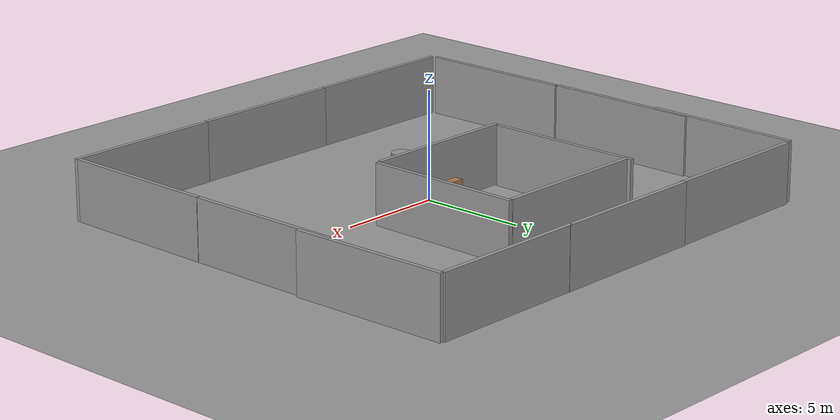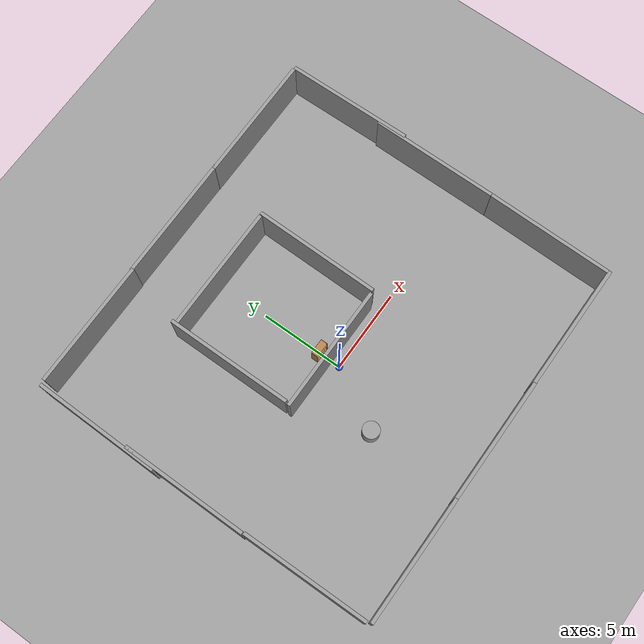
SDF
<sdf version="1.6">
 <world name="default">
  <light name="sun" type="directional">
   <pose>0 0 10 0 -0 0</pose>
   <diffuse>0.8 0.8 0.8 1</diffuse>
   <specular>0.2 0.2 0.2 1</specular>
   <attenuation>
    <range>1000</range>
    <constant>0.9</constant>
    <linear>0.01</linear>
    <quadratic>0.001</quadratic>
   </attenuation>
   <direction>0.5 0.1 -0.9</direction>
  </light>
  <scene><ambient>0.4 0.4 0.4 1</ambient><background>0.7 0.7 0.7 1</background><shadows>1</shadows></scene>
  <physics name="default_physics" default="0" type="ode">
   <max_step_size>0.01</max_step_size>
   <real_time_factor>1</real_time_factor>
   <real_time_update_rate>100</real_time_update_rate>
  </physics>
  <model name="bookshelf">
   <static>1</static>
   <link name="link">
    <inertial><mass>1</mass></inertial>
    <collision name="back">
     <pose>0 0.005 0.6 0 -0 0</pose>
     <geometry><box><size>0.9 0.01 1.2</size></box></geometry>
    </collision>
    <visual name="visual1">
     <pose>0 0.005 0.6 0 -0 0</pose>
     <geometry><box><size>0.9 0.01 1.2</size></box></geometry>
     <material>
      <script><uri>file://media/materials/scripts/gazebo.material</uri><name>Gazebo/Wood</name></script>
     </material>
    </visual>
    <collision name="left_side">
     <pose>0.45 -0.195 0.6 0 -0 0</pose>
     <geometry><box><size>0.02 0.4 1.2</size></box></geometry>
    </collision>
    <visual name="visual2">
     <pose>0.45 -0.195 0.6 0 -0 0</pose>
     <geometry><box><size>0.02 0.4 1.2</size></box></geometry>
     <material>
      <script><uri>file://media/materials/scripts/gazebo.material</uri><name>Gazebo/Wood</name></script>
     </material>
    </visual>
    <collision name="right_side">
     <pose>-0.45 -0.195 0.6 0 -0 0</pose>
     <geometry><box><size>0.02 0.4 1.2</size></box></geometry>
    </collision>
    <visual name="visual3">
     <pose>-0.45 -0.195 0.6 0 -0 0</pose>
     <geometry><box><size>0.02 0.4 1.2</size></box></geometry>
     <material>
      <script><uri>file://media/materials/scripts/gazebo.material</uri><name>Gazebo/Wood</name></script>
     </material>
    </visual>
    <collision name="bottom">
     <pose>0 -0.195 0.03 0 -0 0</pose>
     <geometry><box><size>0.88 0.4 0.06</size></box></geometry>
    </collision>
    <visual name="visual4">
     <pose>0 -0.195 0.03 0 -0 0</pose>
     <geometry><box><size>0.88 0.4 0.06</size></box></geometry>
     <material>
      <script><uri>file://media/materials/scripts/gazebo.material</uri><name>Gazebo/Wood</name></script>
     </material>
    </visual>
    <collision name="top">
     <pose>0 -0.195 1.19 0 -0 0</pose>
     <geometry><box><size>0.88 0.4 0.02</size></box></geometry>
    </collision>
    <visual name="visual5">
     <pose>0 -0.195 1.19 0 -0 0</pose>
     <geometry><box><size>0.88 0.4 0.02</size></box></geometry>
     <material>
      <script><uri>file://media/materials/scripts/gazebo.material</uri><name>Gazebo/Wood</name></script>
     </material>
    </visual>
    <collision name="low_shelf">
     <pose>0 -0.195 0.43 0 -0 0</pose>
     <geometry><box><size>0.88 0.4 0.02</size></box></geometry>
    </collision>
    <visual name="visual6">
     <pose>0 -0.195 0.43 0 -0 0</pose>
     <geometry><box><size>0.88 0.4 0.02</size></box></geometry>
     <material>
      <script><uri>file://media/materials/scripts/gazebo.material</uri><name>Gazebo/Wood</name></script>
     </material>
    </visual>
    <collision name="high_shelf">
     <pose>0 -0.195 0.8 0 -0 0</pose>
     <geometry><box><size>0.88 0.4 0.02</size></box></geometry>
    </collision>
    <visual name="visual7">
     <pose>0 -0.195 0.8 0 -0 0</pose>
     <geometry><box><size>0.88 0.4 0.02</size></box></geometry>
     <material>
      <script><uri>file://media/materials/scripts/gazebo.material</uri><name>Gazebo/Wood</name></script>
     </material>
    </visual>
    <velocity_decay><linear>0</linear><angular>0</angular></velocity_decay>
   </link>
   <pose>0 1.53026 0 0 -0 0</pose>
  </model>
  <model name="ground_plane_0">
   <static>1</static>
   <link name="link">
    <collision name="collision">
     <geometry><plane><normal>0 0 1</normal><size>100 100</size></plane></geometry>
     <surface><friction><ode><mu>100</mu><mu2>50</mu2></ode></friction></surface>
    </collision>
    <visual name="visual">
     <cast_shadows>0</cast_shadows>
     <geometry><plane><normal>0 0 1</normal><size>100 100</size></plane></geometry>
     <material>
      <script><uri>file://media/materials/scripts/gazebo.material</uri><name>Gazebo/Grey</name></script>
     </material>
    </visual>
    <velocity_decay><linear>0</linear><angular>0</angular></velocity_decay>
   </link>
   <pose>0.497681 0 0 0 -0 0</pose>
  </model>
  <model name="unit_cylinder_1">
   <pose>-2 -3.4888 0.49912 0 -0 0</pose>
   <link name="link">
    <inertial>
     <mass>1</mass>
     <inertia><ixx>1</ixx><ixy>0</ixy><ixz>0</ixz><iyy>1</iyy><iyz>0</iyz><izz>1</izz></inertia>
    </inertial>
    <collision name="collision">
     <geometry><cylinder><radius>0.5</radius><length>1</length></cylinder></geometry>
    </collision>
    <visual name="visual">
     <geometry><cylinder><radius>0.5</radius><length>1</length></cylinder></geometry>
     <material>
      <script><uri>file://media/materials/scripts/gazebo.material</uri><name>Gazebo/Grey</name></script>
     </material>
    </visual>
    <velocity_decay><linear>0</linear><angular>0</angular></velocity_decay>
   </link>
   <static>0</static>
  </model>
  <gravity>0 0 -9.8</gravity>
  <magnetic_field>6e-06 2.3e-05 -4.2e-05</magnetic_field>
  <atmosphere type="adiabatic"/>
  <spherical_coordinates>
   <surface_model>EARTH_WGS84</surface_model>
   <latitude_deg>0</latitude_deg>
   <longitude_deg>0</longitude_deg>
   <elevation>0</elevation>
   <heading_deg>0</heading_deg>
  </spherical_coordinates>
  <model name="mbot">
   <link name="base_footprint">
    <inertial>
     <pose>0 0 0.110522 0 -0 0</pose>
     <mass>20.1</mass>
     <inertia><ixx>0.253764</ixx><ixy>0</ixy><ixz>0</ixz><iyy>0.253764</iyy><iyz>0</iyz><izz>0.41</izz></inertia>
    </inertial>
    <collision name="base_footprint_fixed_joint_lump__base_link_collision">
     <pose>0 0 0.11 0 -0 0</pose>
     <geometry><cylinder><length>0.16</length><radius>0.2</radius></cylinder></geometry>
    </collision>
    <collision name="base_footprint_fixed_joint_lump__laser_link_collision_1">
     <pose>0 0 0.215 0 -0 0</pose>
     <geometry><cylinder><length>0.06</length><radius>0.05</radius></cylinder></geometry>
    </collision>
    <visual name="base_footprint_visual">
     <geometry><box><size>0.001 0.001 0.001</size></box></geometry>
     <material><script><uri>__default__</uri><name>__default__</name></script></material>
    </visual>
    <visual name="base_footprint_fixed_joint_lump__base_link_visual_1">
     <pose>0 0 0.11 0 -0 0</pose>
     <geometry><cylinder><length>0.16</length><radius>0.2</radius></cylinder></geometry>
     <material>
      <script><name>Gazebo/Blue</name><uri>file://media/materials/scripts/gazebo.material</uri></script>
     </material>
    </visual>
    <visual name="base_footprint_fixed_joint_lump__laser_link_visual_2">
     <pose>0 0 0.215 0 -0 0</pose>
     <geometry><cylinder><length>0.05</length><radius>0.05</radius></cylinder></geometry>
     <material>
      <script><name>Gazebo/Black</name><uri>file://media/materials/scripts/gazebo.material</uri></script>
     </material>
    </visual>
    <sensor name="rplidar" type="ray">
     <visualize>0</visualize>
     <update_rate>5.5</update_rate>
     <ray>
      <scan>
       <horizontal>
        <samples>360</samples>
        <resolution>1</resolution>
        <min_angle>-3</min_angle>
        <max_angle>3</max_angle>
       </horizontal>
       <vertical><samples>1</samples><min_angle>0</min_angle><max_angle>0</max_angle></vertical>
      </scan>
      <range><min>0.1</min><max>6</max><resolution>0.01</resolution></range>
      <noise><type>gaussian</type><mean>0</mean><stddev>0.01</stddev></noise>
     </ray>
     <plugin name="gazebo_rplidar" filename="libgazebo_ros_laser.so">
      <topicName>/scan</topicName>
      <frameName>laser_link</frameName>
      <robotNamespace>/</robotNamespace>
     </plugin>
     <pose>0 0 0.215 0 -0 0</pose>
    </sensor>
   </link>
   <link name="back_caster_link">
    <pose>0.18 0 0.015 0 -0 0</pose>
    <inertial>
     <mass>0.5</mass>
     <inertia><ixx>4.5e-05</ixx><ixy>0</ixy><ixz>0</ixz><iyy>4.5e-05</iyy><iyz>0</iyz><izz>4.5e-05</izz></inertia>
    </inertial>
    <collision name="back_caster_link_collision">
     <geometry><sphere><radius>0.015</radius></sphere></geometry>
    </collision>
    <visual name="back_caster_link_visual">
     <geometry><sphere><radius>0.015</radius></sphere></geometry>
     <material>
      <script><name>Gazebo/Black</name><uri>file://media/materials/scripts/gazebo.material</uri></script>
     </material>
    </visual>
   </link>
   <joint name="back_caster_joint" type="revolute">
    <child>back_caster_link</child>
    <parent>base_footprint</parent>
    <axis>
     <xyz>0 1 0</xyz>
     <limit><lower>-1e+16</lower><upper>1e+16</upper></limit>
     <dynamics><spring_reference>0</spring_reference><spring_stiffness>0</spring_stiffness></dynamics>
     <use_parent_model_frame>1</use_parent_model_frame>
    </axis>
   </joint>
   <link name="front_caster_link">
    <pose>-0.18 0 0.015 0 -0 0</pose>
    <inertial>
     <mass>0.5</mass>
     <inertia><ixx>4.5e-05</ixx><ixy>0</ixy><ixz>0</ixz><iyy>4.5e-05</iyy><iyz>0</iyz><izz>4.5e-05</izz></inertia>
    </inertial>
    <collision name="front_caster_link_collision">
     <geometry><sphere><radius>0.015</radius></sphere></geometry>
    </collision>
    <visual name="front_caster_link_visual">
     <geometry><sphere><radius>0.015</radius></sphere></geometry>
     <material>
      <script><name>Gazebo/Black</name><uri>file://media/materials/scripts/gazebo.material</uri></script>
     </material>
    </visual>
   </link>
   <joint name="front_caster_joint" type="revolute">
    <child>front_caster_link</child>
    <parent>base_footprint</parent>
    <axis>
     <xyz>0 1 0</xyz>
     <limit><lower>-1e+16</lower><upper>1e+16</upper></limit>
     <dynamics><spring_reference>0</spring_reference><spring_stiffness>0</spring_stiffness></dynamics>
     <use_parent_model_frame>1</use_parent_model_frame>
    </axis>
   </joint>
   <link name="left_wheel_link">
    <pose>0 -0.19 0.06 0 -0 0</pose>
    <inertial>
     <mass>2</mass>
     <inertia>
      <ixx>0.00190417</ixx>
      <ixy>0</ixy>
      <ixz>0</ixz>
      <iyy>0.00190417</iyy>
      <iyz>0</iyz>
      <izz>0.0036</izz>
     </inertia>
    </inertial>
    <collision name="left_wheel_link_collision">
     <pose>0 0 0 1.5708 -0 0</pose>
     <geometry><cylinder><length>0.025</length><radius>0.06</radius></cylinder></geometry>
    </collision>
    <visual name="left_wheel_link_visual">
     <pose>0 0 0 1.5708 -0 0</pose>
     <geometry><cylinder><length>0.025</length><radius>0.06</radius></cylinder></geometry>
     <material>
      <script><name>Gazebo/Gray</name><uri>file://media/materials/scripts/gazebo.material</uri></script>
     </material>
    </visual>
   </link>
   <joint name="left_wheel_joint" type="revolute">
    <child>left_wheel_link</child>
    <parent>base_footprint</parent>
    <axis>
     <xyz>0 1 0</xyz>
     <limit><lower>-1e+16</lower><upper>1e+16</upper></limit>
     <dynamics><spring_reference>0</spring_reference><spring_stiffness>0</spring_stiffness></dynamics>
     <use_parent_model_frame>1</use_parent_model_frame>
    </axis>
   </joint>
   <link name="right_wheel_link">
    <pose>0 0.19 0.06 0 -0 0</pose>
    <inertial>
     <mass>2</mass>
     <inertia>
      <ixx>0.00190417</ixx>
      <ixy>0</ixy>
      <ixz>0</ixz>
      <iyy>0.00190417</iyy>
      <iyz>0</iyz>
      <izz>0.0036</izz>
     </inertia>
    </inertial>
    <collision name="right_wheel_link_collision">
     <pose>0 0 0 1.5708 -0 0</pose>
     <geometry><cylinder><length>0.025</length><radius>0.06</radius></cylinder></geometry>
    </collision>
    <visual name="right_wheel_link_visual">
     <pose>0 0 0 1.5708 -0 0</pose>
     <geometry><cylinder><length>0.025</length><radius>0.06</radius></cylinder></geometry>
     <material>
      <script><name>Gazebo/Gray</name><uri>file://media/materials/scripts/gazebo.material</uri></script>
     </material>
    </visual>
   </link>
   <joint name="right_wheel_joint" type="revolute">
    <child>right_wheel_link</child>
    <parent>base_footprint</parent>
    <axis>
     <xyz>0 1 0</xyz>
     <limit><lower>-1e+16</lower><upper>1e+16</upper></limit>
     <dynamics><spring_reference>0</spring_reference><spring_stiffness>0</spring_stiffness></dynamics>
     <use_parent_model_frame>1</use_parent_model_frame>
    </axis>
   </joint>
   <static>0</static>
   <plugin name="differential_drive_controller" filename="libgazebo_ros_diff_drive.so">
    <rosDebugLevel>Debug</rosDebugLevel>
    <publishWheelTF>true</publishWheelTF>
    <robotNamespace>/</robotNamespace>
    <publishTf>1</publishTf>
    <publishWheelJointState>true</publishWheelJointState>
    <alwaysOn>true</alwaysOn>
    <updateRate>100.0</updateRate>
    <legacyMode>true</legacyMode>
    <leftJoint>left_wheel_joint</leftJoint>
    <rightJoint>right_wheel_joint</rightJoint>
    <wheelSeparation>0.38</wheelSeparation>
    <wheelDiameter>0.12</wheelDiameter>
    <broadcastTF>1</broadcastTF>
    <wheelTorque>30</wheelTorque>
    <wheelAcceleration>1.8</wheelAcceleration>
    <commandTopic>cmd_vel</commandTopic>
    <odometryFrame>odom</odometryFrame>
    <odometryTopic>odom</odometryTopic>
    <robotBaseFrame>base_footprint</robotBaseFrame>
   </plugin>
   <pose>-0.000891 0.004828 7e-06 1.7e-05 -7e-06 0.00022</pose>
  </model>
  <model name="test8">
   <model name="grey_wall">
    <static>1</static>
    <link name="link">
     <pose>0 0 1.4 0 -0 0</pose>
     <collision name="collision"><geometry><box><size>7.5 0.2 2.8</size></box></geometry></collision>
     <visual name="visual">
      <cast_shadows>0</cast_shadows>
      <geometry><box><size>7.5 0.2 2.8</size></box></geometry>
      <material>
       <script>
        <uri>model://grey_wall/materials/scripts</uri>
        <uri>model://grey_wall/materials/textures</uri>
        <name>vrc/grey_wall</name>
       </script>
      </material>
     </visual>
    </link>
    <pose>-7.17425 -11.3815 0 0 -0 0</pose>
   </model>
   <model name="grey_wall_0">
    <static>1</static>
    <link name="link">
     <pose>0 0 1.4 0 -0 0</pose>
     <collision name="collision"><geometry><box><size>7.5 0.2 2.8</size></box></geometry></collision>
     <visual name="visual">
      <cast_shadows>0</cast_shadows>
      <geometry><box><size>7.5 0.2 2.8</size></box></geometry>
      <material>
       <script>
        <uri>model://grey_wall/materials/scripts</uri>
        <uri>model://grey_wall/materials/textures</uri>
        <name>vrc/grey_wall</name>
       </script>
      </material>
     </visual>
    </link>
    <pose>0.24852 -11.3669 0 0 -0 0</pose>
   </model>
   <model name="grey_wall_1">
    <static>1</static>
    <link name="link">
     <pose>0 0 1.4 0 -0 0</pose>
     <collision name="collision"><geometry><box><size>7.5 0.2 2.8</size></box></geometry></collision>
     <visual name="visual">
      <cast_shadows>0</cast_shadows>
      <geometry><box><size>7.5 0.2 2.8</size></box></geometry>
      <material>
       <script>
        <uri>model://grey_wall/materials/scripts</uri>
        <uri>model://grey_wall/materials/textures</uri>
        <name>vrc/grey_wall</name>
       </script>
      </material>
     </visual>
    </link>
    <pose>0.27573 9.56517 0 0 -0 0</pose>
   </model>
   <model name="grey_wall_10">
    <static>1</static>
    <link name="link">
     <pose>0 0 1.4 0 -0 0</pose>
     <collision name="collision"><geometry><box><size>7.5 0.2 2.8</size></box></geometry></collision>
     <visual name="visual">
      <cast_shadows>0</cast_shadows>
      <geometry><box><size>7.5 0.2 2.8</size></box></geometry>
      <material>
       <script>
        <uri>model://grey_wall/materials/scripts</uri>
        <uri>model://grey_wall/materials/textures</uri>
        <name>vrc/grey_wall</name>
       </script>
      </material>
     </visual>
    </link>
    <pose>-7.07497 9.52381 0 0 -0 0</pose>
   </model>
   <model name="grey_wall_11">
    <static>1</static>
    <link name="link">
     <pose>0 0 1.4 0 -0 0</pose>
     <collision name="collision"><geometry><box><size>7.5 0.2 2.8</size></box></geometry></collision>
     <visual name="visual">
      <cast_shadows>0</cast_shadows>
      <geometry><box><size>7.5 0.2 2.8</size></box></geometry>
      <material>
       <script>
        <uri>model://grey_wall/materials/scripts</uri>
        <uri>model://grey_wall/materials/textures</uri>
        <name>vrc/grey_wall</name>
       </script>
      </material>
     </visual>
    </link>
    <pose>-11.1588 5.75453 0 0 -0 1.55498</pose>
   </model>
   <model name="grey_wall_12">
    <static>1</static>
    <link name="link">
     <pose>0 0 1.4 0 -0 0</pose>
     <collision name="collision"><geometry><box><size>7.5 0.2 2.8</size></box></geometry></collision>
     <visual name="visual">
      <cast_shadows>0</cast_shadows>
      <geometry><box><size>7.5 0.2 2.8</size></box></geometry>
      <material>
       <script>
        <uri>model://grey_wall/materials/scripts</uri>
        <uri>model://grey_wall/materials/textures</uri>
        <name>vrc/grey_wall</name>
       </script>
      </material>
     </visual>
    </link>
    <pose>-0.754438 -1.63418 0 0 -0 0</pose>
   </model>
   <model name="grey_wall_13">
    <static>1</static>
    <link name="link">
     <pose>0 0 1.4 0 -0 0</pose>
     <collision name="collision"><geometry><box><size>7.5 0.2 2.8</size></box></geometry></collision>
     <visual name="visual">
      <cast_shadows>0</cast_shadows>
      <geometry><box><size>7.5 0.2 2.8</size></box></geometry>
      <material>
       <script>
        <uri>model://grey_wall/materials/scripts</uri>
        <uri>model://grey_wall/materials/textures</uri>
        <name>vrc/grey_wall</name>
       </script>
      </material>
     </visual>
    </link>
    <pose>-4.39709 2.32599 0 0 0 -1.56974</pose>
   </model>
   <model name="grey_wall_14">
    <static>1</static>
    <link name="link">
     <pose>0 0 1.4 0 -0 0</pose>
     <collision name="collision"><geometry><box><size>7.5 0.2 2.8</size></box></geometry></collision>
     <visual name="visual">
      <cast_shadows>0</cast_shadows>
      <geometry><box><size>7.5 0.2 2.8</size></box></geometry>
      <material>
       <script>
        <uri>model://grey_wall/materials/scripts</uri>
        <uri>model://grey_wall/materials/textures</uri>
        <name>vrc/grey_wall</name>
       </script>
      </material>
     </visual>
    </link>
    <pose>11.4998 5.82514 0 0 0 -1.55495</pose>
   </model>
   <model name="grey_wall_2">
    <static>1</static>
    <link name="link">
     <pose>0 0 1.4 0 -0 0</pose>
     <collision name="collision"><geometry><box><size>7.5 0.2 2.8</size></box></geometry></collision>
     <visual name="visual">
      <cast_shadows>0</cast_shadows>
      <geometry><box><size>7.5 0.2 2.8</size></box></geometry>
      <material>
       <script>
        <uri>model://grey_wall/materials/scripts</uri>
        <uri>model://grey_wall/materials/textures</uri>
        <name>vrc/grey_wall</name>
       </script>
      </material>
     </visual>
    </link>
    <pose>7.59403 9.55198 0 0 -0 0</pose>
   </model>
   <model name="grey_wall_3">
    <static>1</static>
    <link name="link">
     <pose>0 0 1.4 0 -0 0</pose>
     <collision name="collision"><geometry><box><size>7.5 0.2 2.8</size></box></geometry></collision>
     <visual name="visual">
      <cast_shadows>0</cast_shadows>
      <geometry><box><size>7.5 0.2 2.8</size></box></geometry>
      <material>
       <script>
        <uri>model://grey_wall/materials/scripts</uri>
        <uri>model://grey_wall/materials/textures</uri>
        <name>vrc/grey_wall</name>
       </script>
      </material>
     </visual>
    </link>
    <pose>-11.0205 -7.39932 0 0 -0 1.57824</pose>
   </model>
   <model name="grey_wall_4">
    <static>1</static>
    <link name="link">
     <pose>0 0 1.4 0 -0 0</pose>
     <collision name="collision"><geometry><box><size>7.5 0.2 2.8</size></box></geometry></collision>
     <visual name="visual">
      <cast_shadows>0</cast_shadows>
      <geometry><box><size>7.5 0.2 2.8</size></box></geometry>
      <material>
       <script>
        <uri>model://grey_wall/materials/scripts</uri>
        <uri>model://grey_wall/materials/textures</uri>
        <name>vrc/grey_wall</name>
       </script>
      </material>
     </visual>
    </link>
    <pose>-11.0874 0.142747 0 0 0 -1.57572</pose>
   </model>
   <model name="grey_wall_5">
    <static>1</static>
    <link name="link">
     <pose>0 0 1.4 0 -0 0</pose>
     <collision name="collision"><geometry><box><size>7.5 0.2 2.8</size></box></geometry></collision>
     <visual name="visual">
      <cast_shadows>0</cast_shadows>
      <geometry><box><size>7.5 0.2 2.8</size></box></geometry>
      <material>
       <script>
        <uri>model://grey_wall/materials/scripts</uri>
        <uri>model://grey_wall/materials/textures</uri>
        <name>vrc/grey_wall</name>
       </script>
      </material>
     </visual>
    </link>
    <pose>11.38 -7.50768 0 0 0 -1.58254</pose>
   </model>
   <model name="grey_wall_6">
    <static>1</static>
    <link name="link">
     <pose>0 0 1.4 0 -0 0</pose>
     <collision name="collision"><geometry><box><size>7.5 0.2 2.8</size></box></geometry></collision>
     <visual name="visual">
      <cast_shadows>0</cast_shadows>
      <geometry><box><size>7.5 0.2 2.8</size></box></geometry>
      <material>
       <script>
        <uri>model://grey_wall/materials/scripts</uri>
        <uri>model://grey_wall/materials/textures</uri>
        <name>vrc/grey_wall</name>
       </script>
      </material>
     </visual>
    </link>
    <pose>11.4252 0.011802 0 0 -0 1.5707</pose>
   </model>
   <model name="grey_wall_7">
    <static>1</static>
    <link name="link">
     <pose>0 0 1.4 0 -0 0</pose>
     <collision name="collision"><geometry><box><size>7.5 0.2 2.8</size></box></geometry></collision>
     <visual name="visual">
      <cast_shadows>0</cast_shadows>
      <geometry><box><size>7.5 0.2 2.8</size></box></geometry>
      <material>
       <script>
        <uri>model://grey_wall/materials/scripts</uri>
        <uri>model://grey_wall/materials/textures</uri>
        <name>vrc/grey_wall</name>
       </script>
      </material>
     </visual>
    </link>
    <pose>3.20552 2.13206 0 0 -0 1.5606</pose>
   </model>
   <model name="grey_wall_8">
    <static>1</static>
    <link name="link">
     <pose>0 0 1.4 0 -0 0</pose>
     <collision name="collision"><geometry><box><size>7.5 0.2 2.8</size></box></geometry></collision>
     <visual name="visual">
      <cast_shadows>0</cast_shadows>
      <geometry><box><size>7.5 0.2 2.8</size></box></geometry>
      <material>
       <script>
        <uri>model://grey_wall/materials/scripts</uri>
        <uri>model://grey_wall/materials/textures</uri>
        <name>vrc/grey_wall</name>
       </script>
      </material>
     </visual>
    </link>
    <pose>7.67638 -11.3415 0 0 -0 0</pose>
   </model>
   <model name="grey_wall_9">
    <static>1</static>
    <link name="link">
     <pose>0 0 1.4 0 -0 0</pose>
     <collision name="collision"><geometry><box><size>7.5 0.2 2.8</size></box></geometry></collision>
     <visual name="visual">
      <cast_shadows>0</cast_shadows>
      <geometry><box><size>7.5 0.2 2.8</size></box></geometry>
      <material>
       <script>
        <uri>model://grey_wall/materials/scripts</uri>
        <uri>model://grey_wall/materials/textures</uri>
        <name>vrc/grey_wall</name>
       </script>
      </material>
     </visual>
    </link>
    <pose>-0.637585 5.79779 0 0 -0 0</pose>
   </model>
   <static>0</static>
   <pose>0.754438 2.22736 0 0 -0 0</pose>
  </model>
 </world>
</sdf>
